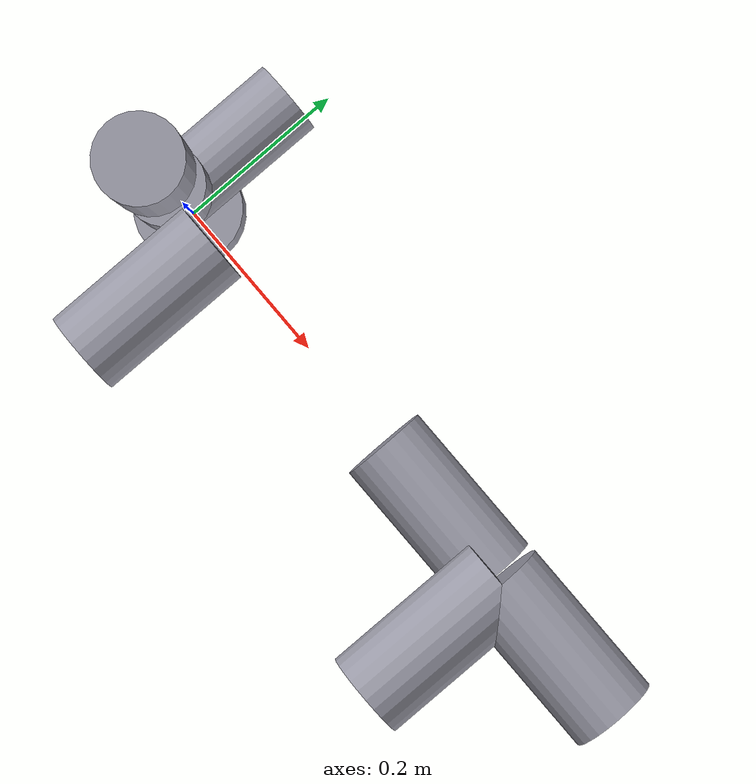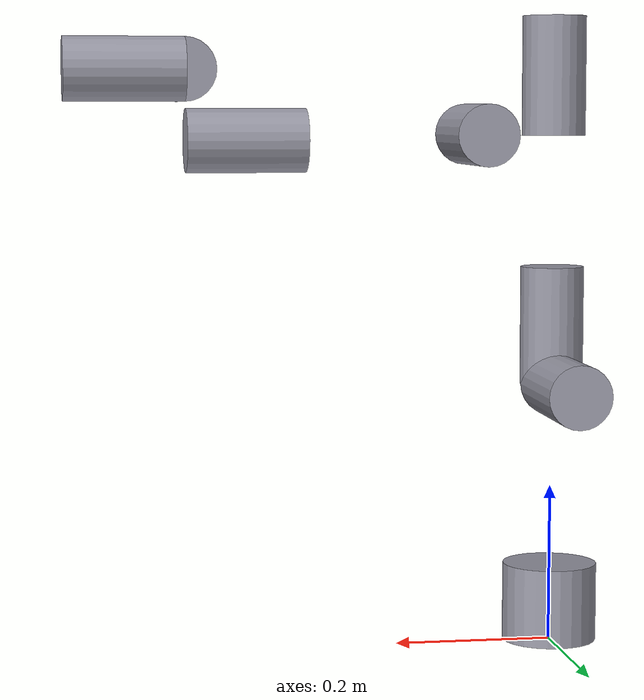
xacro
<?xml version="1.0"?>
<robot xmlns:xacro="http://www.ros.org/wiki/xacro" name="panda">

  <!-- Args propagated from launch -->
  <xacro:arg name="use_sim" default="true"/>
  <xacro:arg name="can_interface" default="vcan0"/>

  <xacro:property name="num_joints" value="7"/>

  <!-- ===== Geometry macros ===== -->
  <xacro:macro name="link_cyl" params="name length:=0.15 radius:=0.04 mass:=1.0">
    <link name="${name}">
      <visual>
        <origin xyz="0 0 ${length/2}" rpy="0 0 0"/>
        <geometry><cylinder radius="${radius}" length="${length}"/></geometry>
        <material name="steel"><color rgba="0.6 0.6 0.65 1.0"/></material>
      </visual>
      <collision>
        <origin xyz="0 0 ${length/2}" rpy="0 0 0"/>
        <geometry><cylinder radius="${radius}" length="${length}"/></geometry>
      </collision>
      <inertial>
        <origin xyz="0 0 ${length/2}" rpy="0 0 0"/>
        <mass value="${mass}"/>
        <inertia ixx="0.01" ixy="0.0" ixz="0.0" iyy="0.01" iyz="0.0" izz="0.005"/>
      </inertial>
    </link>
  </xacro:macro>

  <!-- ===== Kinematic tree ===== -->
  <link name="world"/>

  <xacro:link_cyl name="panda_link0" length="0.10" radius="0.06" mass="2.0"/>
  <joint name="base_fixed" type="fixed">
    <parent link="world"/>
    <child link="panda_link0"/>
    <origin xyz="0 0 0" rpy="0 0 0"/>
  </joint>

  <xacro:link_cyl name="panda_link1"/>
  <joint name="panda_joint1" type="revolute">
    <parent link="panda_link0"/>
    <child link="panda_link1"/>
    <origin xyz="0 0 0.333" rpy="0 0 0"/>
    <axis xyz="0 0 1"/>
    <limit lower="-2.8973" upper="2.8973" effort="87.0" velocity="2.62"/>
    <dynamics damping="0.1" friction="0.0"/>
  </joint>

  <xacro:link_cyl name="panda_link2"/>
  <joint name="panda_joint2" type="revolute">
    <parent link="panda_link1"/>
    <child link="panda_link2"/>
    <origin xyz="0 0 0" rpy="-1.57079632679 0 0"/>
    <axis xyz="0 0 1"/>
    <limit lower="-1.7628" upper="1.7628" effort="87.0" velocity="2.62"/>
    <dynamics damping="0.1" friction="0.0"/>
  </joint>

  <xacro:link_cyl name="panda_link3"/>
  <joint name="panda_joint3" type="revolute">
    <parent link="panda_link2"/>
    <child link="panda_link3"/>
    <origin xyz="0 -0.316 0" rpy="1.57079632679 0 0"/>
    <axis xyz="0 0 1"/>
    <limit lower="-2.8973" upper="2.8973" effort="87.0" velocity="2.62"/>
    <dynamics damping="0.1" friction="0.0"/>
  </joint>

  <xacro:link_cyl name="panda_link4"/>
  <joint name="panda_joint4" type="revolute">
    <parent link="panda_link3"/>
    <child link="panda_link4"/>
    <origin xyz="0.0825 0 0" rpy="1.57079632679 0 0"/>
    <axis xyz="0 0 1"/>
    <limit lower="-3.0718" upper="-0.0698" effort="87.0" velocity="2.62"/>
    <dynamics damping="0.1" friction="0.0"/>
  </joint>

  <xacro:link_cyl name="panda_link5"/>
  <joint name="panda_joint5" type="revolute">
    <parent link="panda_link4"/>
    <child link="panda_link5"/>
    <origin xyz="-0.0825 0.384 0" rpy="-1.57079632679 0 0"/>
    <axis xyz="0 0 1"/>
    <limit lower="-2.8973" upper="2.8973" effort="12.0" velocity="5.26"/>
    <dynamics damping="0.1" friction="0.0"/>
  </joint>

  <xacro:link_cyl name="panda_link6"/>
  <joint name="panda_joint6" type="revolute">
    <parent link="panda_link5"/>
    <child link="panda_link6"/>
    <origin xyz="0 0 0" rpy="1.57079632679 0 0"/>
    <axis xyz="0 0 1"/>
    <limit lower="-0.0175" upper="3.7525" effort="12.0" velocity="4.18"/>
    <dynamics damping="0.1" friction="0.0"/>
  </joint>

  <xacro:link_cyl name="panda_link7"/>
  <joint name="panda_joint7" type="revolute">
    <parent link="panda_link6"/>
    <child link="panda_link7"/>
    <origin xyz="0.088 0 0" rpy="1.57079632679 0 0"/>
    <axis xyz="0 0 1"/>
    <limit lower="-2.8973" upper="2.8973" effort="12.0" velocity="5.26"/>
    <dynamics damping="0.1" friction="0.0"/>
  </joint>

  <!-- End-effector / tool frame -->
  <link name="panda_hand"/>
  <joint name="panda_hand_joint" type="fixed">
    <parent link="panda_link${num_joints}"/>
    <child link="panda_hand"/>
    <origin xyz="0 0 0.107" rpy="0 0 -0.78539816339"/>
  </joint>
  <link name="panda_ee"/>
  <joint name="panda_ee_joint" type="fixed">
    <parent link="panda_hand"/>
    <child link="panda_ee"/>
    <origin xyz="0 0 0.10" rpy="0 0 0"/>
  </joint>

  <!-- ===== ros2_control hardware binding ===== -->
  <xacro:include filename="$(find teleop_description)/urdf/panda.ros2_control.xacro"/>
  <xacro:panda_ros2_control
      name="panda_canopen_system"
      num_joints="${num_joints}"
      use_sim="$(arg use_sim)"
      can_interface="$(arg can_interface)"/>

</robot>
